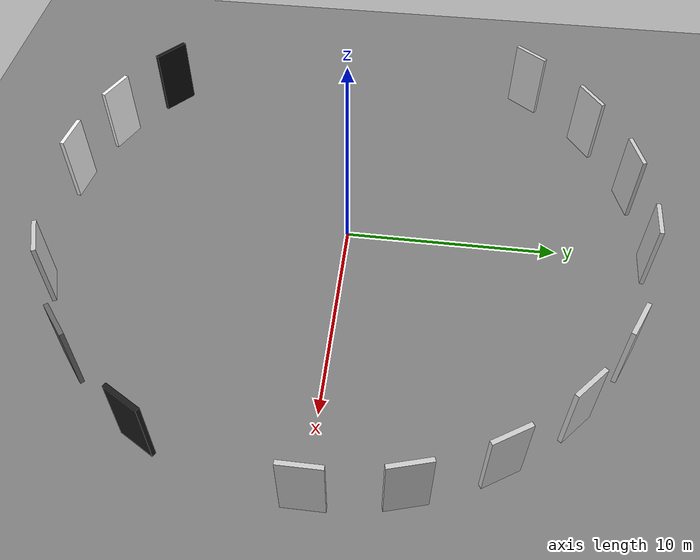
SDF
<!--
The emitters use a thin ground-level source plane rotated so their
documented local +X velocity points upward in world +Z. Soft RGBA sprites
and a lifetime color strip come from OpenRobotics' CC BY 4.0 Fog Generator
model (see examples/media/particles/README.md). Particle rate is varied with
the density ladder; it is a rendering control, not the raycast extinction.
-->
<?xml version="1.0"?>
<sdf version="1.9">
  <world name="ouster_smoke">

    <physics name="default" type="ignored">
      <max_step_size>0.004</max_step_size>
      <real_time_factor>1.0</real_time_factor>
      <real_time_update_rate>250</real_time_update_rate>
    </physics>

    <plugin filename="gz-sim-physics-system"
            name="gz::sim::systems::Physics"/>
    <plugin filename="gz-sim-altimeter-system"
            name="gz::sim::systems::Altimeter"/>
    <plugin filename="gz-sim-scene-broadcaster-system"
            name="gz::sim::systems::SceneBroadcaster"/>
    <plugin filename="gz-sim-user-commands-system"
            name="gz::sim::systems::UserCommands"/>
    <plugin filename="gz-sim-imu-system"
            name="gz::sim::systems::Imu"/>
    <!-- Serves each emitter's .../cmd topic so the visual clouds can be
         toggled and retuned at runtime. The explicit LiDAR volumes are
         intentionally unaffected by those rendering controls. -->
    <plugin filename="gz-sim-particle-emitter-system"
            name="gz::sim::systems::ParticleEmitter"/>

    <scene>
      <ambient>0.4 0.4 0.4 1</ambient>
      <background>0.7 0.8 0.9 1</background>
    </scene>

    <light type="directional" name="sun">
      <cast_shadows>true</cast_shadows>
      <pose>0 0 10 0 0 0</pose>
      <diffuse>1 1 1 1</diffuse>
      <specular>0.3 0.3 0.3 1</specular>
      <direction>-0.5 0.3 -1</direction>
    </light>

    <model name="ground_plane">
      <static>true</static>
      <link name="link">
        <collision name="collision">
          <geometry><plane><normal>0 0 1</normal><size>80 80</size></plane></geometry>
        </collision>
        <visual name="visual">
          <geometry><plane><normal>0 0 1</normal><size>80 80</size></plane></geometry>
          <material><ambient>0.3 0.3 0.3 1</ambient><diffuse>0.5 0.5 0.5 1</diffuse></material>
        </visual>
      </link>
    </model>

    <!-- ZONE A: density ladder (see the header table). The five walls omit
         laser_retro on purpose and therefore use base_reflectivity=50. -->
    <model name="A_wall_005">
      <static>true</static>
      <pose>14.000 0.000 1.50 0 0 0.0000</pose>
      <link name="link">
        <visual name="visual">
          <geometry><box><size>0.2 1.80 4.00</size></box></geometry>
          <material>
            <ambient>0.80 0.80 0.80 1</ambient>
            <diffuse>0.80 0.80 0.80 1</diffuse>
          </material>
        </visual>
      </link>
    </model>
    <model name="A_smoke_005">
      <static>true</static>
      <pose>7.000 0.000 1.20 0 0 0.0000</pose>
      <link name="link">
        <particle_emitter name="emitter" type="box">
          <emitting>true</emitting>
          <pose>0 0 -1.15 0 -1.5708 0</pose>
          <size>0.08 1.4 1.4</size>
          <particle_size>0.45 0.45 0.01</particle_size>
          <lifetime>6.0</lifetime>
          <min_velocity>0.20</min_velocity>
          <max_velocity>0.35</max_velocity>
          <rate>6</rate>
          <scale_rate>0.12</scale_rate>
          <particle_scatter_ratio>0.05</particle_scatter_ratio>
          <material>
            <diffuse>0.70 0.70 0.70 0.72</diffuse>
            <specular>0.05 0.05 0.05 1</specular>
            <pbr>
              <metal>
                <albedo_map>../media/particles/fog.png</albedo_map>
              </metal>
            </pbr>
          </material>
          <color_range_image>../media/particles/fogcolors.png</color_range_image>
        </particle_emitter>
      </link>
    </model>
    <model name="A_wall_015">
      <static>true</static>
      <pose>13.458 3.859 1.50 0 0 0.2793</pose>
      <link name="link">
        <visual name="visual">
          <geometry><box><size>0.2 1.80 4.00</size></box></geometry>
          <material>
            <ambient>0.80 0.80 0.80 1</ambient>
            <diffuse>0.80 0.80 0.80 1</diffuse>
          </material>
        </visual>
      </link>
    </model>
    <model name="A_smoke_015">
      <static>true</static>
      <pose>6.729 1.929 1.20 0 0 0.2793</pose>
      <link name="link">
        <particle_emitter name="emitter" type="box">
          <emitting>true</emitting>
          <pose>0 0 -1.15 0 -1.5708 0</pose>
          <size>0.08 1.4 1.4</size>
          <particle_size>0.45 0.45 0.01</particle_size>
          <lifetime>6.0</lifetime>
          <min_velocity>0.20</min_velocity>
          <max_velocity>0.35</max_velocity>
          <rate>12</rate>
          <scale_rate>0.12</scale_rate>
          <particle_scatter_ratio>0.15</particle_scatter_ratio>
          <material>
            <diffuse>0.70 0.70 0.70 0.72</diffuse>
            <specular>0.05 0.05 0.05 1</specular>
            <pbr>
              <metal>
                <albedo_map>../media/particles/fog.png</albedo_map>
              </metal>
            </pbr>
          </material>
          <color_range_image>../media/particles/fogcolors.png</color_range_image>
        </particle_emitter>
      </link>
    </model>
    <model name="A_wall_035">
      <static>true</static>
      <pose>11.873 7.419 1.50 0 0 0.5585</pose>
      <link name="link">
        <visual name="visual">
          <geometry><box><size>0.2 1.80 4.00</size></box></geometry>
          <material>
            <ambient>0.80 0.80 0.80 1</ambient>
            <diffuse>0.80 0.80 0.80 1</diffuse>
          </material>
        </visual>
      </link>
    </model>
    <model name="A_smoke_035">
      <static>true</static>
      <pose>5.936 3.709 1.20 0 0 0.5585</pose>
      <link name="link">
        <particle_emitter name="emitter" type="box">
          <emitting>true</emitting>
          <pose>0 0 -1.15 0 -1.5708 0</pose>
          <size>0.08 1.4 1.4</size>
          <particle_size>0.45 0.45 0.01</particle_size>
          <lifetime>6.0</lifetime>
          <min_velocity>0.20</min_velocity>
          <max_velocity>0.35</max_velocity>
          <rate>22</rate>
          <scale_rate>0.12</scale_rate>
          <particle_scatter_ratio>0.35</particle_scatter_ratio>
          <material>
            <diffuse>0.70 0.70 0.70 0.72</diffuse>
            <specular>0.05 0.05 0.05 1</specular>
            <pbr>
              <metal>
                <albedo_map>../media/particles/fog.png</albedo_map>
              </metal>
            </pbr>
          </material>
          <color_range_image>../media/particles/fogcolors.png</color_range_image>
        </particle_emitter>
      </link>
    </model>
    <model name="A_wall_065">
      <static>true</static>
      <pose>9.368 10.404 1.50 0 0 0.8378</pose>
      <link name="link">
        <visual name="visual">
          <geometry><box><size>0.2 1.80 4.00</size></box></geometry>
          <material>
            <ambient>0.80 0.80 0.80 1</ambient>
            <diffuse>0.80 0.80 0.80 1</diffuse>
          </material>
        </visual>
      </link>
    </model>
    <model name="A_smoke_065">
      <static>true</static>
      <pose>4.684 5.202 1.20 0 0 0.8378</pose>
      <link name="link">
        <particle_emitter name="emitter" type="box">
          <emitting>true</emitting>
          <pose>0 0 -1.15 0 -1.5708 0</pose>
          <size>0.08 1.4 1.4</size>
          <particle_size>0.45 0.45 0.01</particle_size>
          <lifetime>6.0</lifetime>
          <min_velocity>0.20</min_velocity>
          <max_velocity>0.35</max_velocity>
          <rate>36</rate>
          <scale_rate>0.12</scale_rate>
          <particle_scatter_ratio>0.65</particle_scatter_ratio>
          <material>
            <diffuse>0.70 0.70 0.70 0.72</diffuse>
            <specular>0.05 0.05 0.05 1</specular>
            <pbr>
              <metal>
                <albedo_map>../media/particles/fog.png</albedo_map>
              </metal>
            </pbr>
          </material>
          <color_range_image>../media/particles/fogcolors.png</color_range_image>
        </particle_emitter>
      </link>
    </model>
    <model name="A_wall_100">
      <static>true</static>
      <pose>6.137 12.583 1.50 0 0 1.1170</pose>
      <link name="link">
        <visual name="visual">
          <geometry><box><size>0.2 1.80 4.00</size></box></geometry>
          <material>
            <ambient>0.80 0.80 0.80 1</ambient>
            <diffuse>0.80 0.80 0.80 1</diffuse>
          </material>
        </visual>
      </link>
    </model>
    <model name="A_smoke_100">
      <static>true</static>
      <pose>3.069 6.292 1.20 0 0 1.1170</pose>
      <link name="link">
        <particle_emitter name="emitter" type="box">
          <emitting>true</emitting>
          <pose>0 0 -1.15 0 -1.5708 0</pose>
          <size>0.08 1.4 1.4</size>
          <particle_size>0.45 0.45 0.01</particle_size>
          <lifetime>6.0</lifetime>
          <min_velocity>0.20</min_velocity>
          <max_velocity>0.35</max_velocity>
          <rate>48</rate>
          <scale_rate>0.12</scale_rate>
          <particle_scatter_ratio>1.0</particle_scatter_ratio>
          <material>
            <diffuse>0.70 0.70 0.70 0.72</diffuse>
            <specular>0.05 0.05 0.05 1</specular>
            <pbr>
              <metal>
                <albedo_map>../media/particles/fog.png</albedo_map>
              </metal>
            </pbr>
          </material>
          <color_range_image>../media/particles/fogcolors.png</color_range_image>
        </particle_emitter>
      </link>
    </model>
    <!-- ZONE B: one density, multiple explicit LiDAR-volume shapes; the
         corresponding visual plumes deliberately share one emitter setup. -->
    <model name="B_wall_box">
      <static>true</static>
      <pose>0.489 13.991 1.50 0 0 1.5359</pose>
      <link name="link">
        <visual name="visual">
          <geometry><box><size>0.2 1.80 4.00</size></box></geometry>
          <laser_retro>0.8</laser_retro>
          <material>
            <ambient>0.80 0.80 0.80 1</ambient>
            <diffuse>0.80 0.80 0.80 1</diffuse>
          </material>
        </visual>
      </link>
    </model>
    <model name="B_smoke_box">
      <static>true</static>
      <pose>0.244 6.996 1.20 0 0 1.5359</pose>
      <link name="link">
        <particle_emitter name="emitter" type="box">
          <emitting>true</emitting>
          <pose>0 0 -1.15 0 -1.5708 0</pose>
          <size>0.08 1.4 1.4</size>
          <particle_size>0.45 0.45 0.01</particle_size>
          <lifetime>6.0</lifetime>
          <min_velocity>0.20</min_velocity>
          <max_velocity>0.35</max_velocity>
          <rate>22</rate>
          <scale_rate>0.12</scale_rate>
          <particle_scatter_ratio>0.35</particle_scatter_ratio>
          <material>
            <diffuse>0.70 0.70 0.70 0.72</diffuse>
            <specular>0.05 0.05 0.05 1</specular>
            <pbr>
              <metal>
                <albedo_map>../media/particles/fog.png</albedo_map>
              </metal>
            </pbr>
          </material>
          <color_range_image>../media/particles/fogcolors.png</color_range_image>
        </particle_emitter>
      </link>
    </model>
    <model name="B_wall_cylinder">
      <static>true</static>
      <pose>-3.859 13.458 1.50 0 0 1.8500</pose>
      <link name="link">
        <visual name="visual">
          <geometry><box><size>0.2 1.80 4.00</size></box></geometry>
          <laser_retro>0.8</laser_retro>
          <material>
            <ambient>0.80 0.80 0.80 1</ambient>
            <diffuse>0.80 0.80 0.80 1</diffuse>
          </material>
        </visual>
      </link>
    </model>
    <model name="B_smoke_cylinder">
      <static>true</static>
      <pose>-1.929 6.729 1.20 0 0 1.8500</pose>
      <link name="link">
        <particle_emitter name="emitter" type="box">
          <emitting>true</emitting>
          <pose>0 0 -1.15 0 -1.5708 0</pose>
          <size>0.08 1.4 1.4</size>
          <particle_size>0.45 0.45 0.01</particle_size>
          <lifetime>6.0</lifetime>
          <min_velocity>0.20</min_velocity>
          <max_velocity>0.35</max_velocity>
          <rate>22</rate>
          <scale_rate>0.12</scale_rate>
          <particle_scatter_ratio>0.35</particle_scatter_ratio>
          <material>
            <diffuse>0.70 0.70 0.70 0.72</diffuse>
            <specular>0.05 0.05 0.05 1</specular>
            <pbr>
              <metal>
                <albedo_map>../media/particles/fog.png</albedo_map>
              </metal>
            </pbr>
          </material>
          <color_range_image>../media/particles/fogcolors.png</color_range_image>
        </particle_emitter>
      </link>
    </model>
    <model name="B_wall_ellipsoid">
      <static>true</static>
      <pose>-7.829 11.607 1.50 0 0 2.1642</pose>
      <link name="link">
        <visual name="visual">
          <geometry><box><size>0.2 1.80 4.00</size></box></geometry>
          <laser_retro>0.8</laser_retro>
          <material>
            <ambient>0.80 0.80 0.80 1</ambient>
            <diffuse>0.80 0.80 0.80 1</diffuse>
          </material>
        </visual>
      </link>
    </model>
    <model name="B_smoke_ellipsoid">
      <static>true</static>
      <pose>-3.914 5.803 1.20 0 0 2.1642</pose>
      <link name="link">
        <particle_emitter name="emitter" type="box">
          <emitting>true</emitting>
          <pose>0 0 -1.15 0 -1.5708 0</pose>
          <size>0.08 1.4 1.4</size>
          <particle_size>0.45 0.45 0.01</particle_size>
          <lifetime>6.0</lifetime>
          <min_velocity>0.20</min_velocity>
          <max_velocity>0.35</max_velocity>
          <rate>22</rate>
          <scale_rate>0.12</scale_rate>
          <particle_scatter_ratio>0.35</particle_scatter_ratio>
          <material>
            <diffuse>0.70 0.70 0.70 0.72</diffuse>
            <specular>0.05 0.05 0.05 1</specular>
            <pbr>
              <metal>
                <albedo_map>../media/particles/fog.png</albedo_map>
              </metal>
            </pbr>
          </material>
          <color_range_image>../media/particles/fogcolors.png</color_range_image>
        </particle_emitter>
      </link>
    </model>
    <model name="B_wall_point">
      <static>true</static>
      <pose>-11.032 8.619 1.50 0 0 2.4784</pose>
      <link name="link">
        <visual name="visual">
          <geometry><box><size>0.2 1.80 4.00</size></box></geometry>
          <laser_retro>0.8</laser_retro>
          <material>
            <ambient>0.80 0.80 0.80 1</ambient>
            <diffuse>0.80 0.80 0.80 1</diffuse>
          </material>
        </visual>
      </link>
    </model>
    <model name="B_smoke_point">
      <static>true</static>
      <pose>-5.516 4.310 1.20 0 0 2.4784</pose>
      <link name="link">
        <particle_emitter name="emitter" type="box">
          <emitting>true</emitting>
          <pose>0 0 -1.15 0 -1.5708 0</pose>
          <size>0.08 1.4 1.4</size>
          <particle_size>0.45 0.45 0.01</particle_size>
          <lifetime>6.0</lifetime>
          <min_velocity>0.20</min_velocity>
          <max_velocity>0.35</max_velocity>
          <rate>22</rate>
          <scale_rate>0.12</scale_rate>
          <particle_scatter_ratio>0.35</particle_scatter_ratio>
          <material>
            <diffuse>0.70 0.70 0.70 0.72</diffuse>
            <specular>0.05 0.05 0.05 1</specular>
            <pbr>
              <metal>
                <albedo_map>../media/particles/fog.png</albedo_map>
              </metal>
            </pbr>
          </material>
          <color_range_image>../media/particles/fogcolors.png</color_range_image>
        </particle_emitter>
      </link>
    </model>
    <!-- ZONE C: no wall behind - every return here is the medium. -->
    <model name="C_sky_020">
      <static>true</static>
      <pose>-6.792 1.693 1.20 0 0 2.8972</pose>
      <link name="link">
        <particle_emitter name="emitter" type="box">
          <emitting>true</emitting>
          <pose>0 0 -1.15 0 -1.5708 0</pose>
          <size>0.08 1.4 1.4</size>
          <particle_size>0.45 0.45 0.01</particle_size>
          <lifetime>6.0</lifetime>
          <min_velocity>0.20</min_velocity>
          <max_velocity>0.35</max_velocity>
          <rate>14</rate>
          <scale_rate>0.12</scale_rate>
          <particle_scatter_ratio>0.2</particle_scatter_ratio>
          <material>
            <diffuse>0.72 0.64 0.55 0.72</diffuse>
            <specular>0.05 0.05 0.05 1</specular>
            <pbr>
              <metal>
                <albedo_map>../media/particles/fog.png</albedo_map>
              </metal>
            </pbr>
          </material>
          <color_range_image>../media/particles/fogcolors.png</color_range_image>
        </particle_emitter>
      </link>
    </model>
    <model name="C_sky_050">
      <static>true</static>
      <pose>-6.962 -0.732 1.20 0 0 3.2463</pose>
      <link name="link">
        <particle_emitter name="emitter" type="box">
          <emitting>true</emitting>
          <pose>0 0 -1.15 0 -1.5708 0</pose>
          <size>0.08 1.4 1.4</size>
          <particle_size>0.45 0.45 0.01</particle_size>
          <lifetime>6.0</lifetime>
          <min_velocity>0.20</min_velocity>
          <max_velocity>0.35</max_velocity>
          <rate>28</rate>
          <scale_rate>0.12</scale_rate>
          <particle_scatter_ratio>0.5</particle_scatter_ratio>
          <material>
            <diffuse>0.72 0.64 0.55 0.72</diffuse>
            <specular>0.05 0.05 0.05 1</specular>
            <pbr>
              <metal>
                <albedo_map>../media/particles/fog.png</albedo_map>
              </metal>
            </pbr>
          </material>
          <color_range_image>../media/particles/fogcolors.png</color_range_image>
        </particle_emitter>
      </link>
    </model>
    <model name="C_sky_100">
      <static>true</static>
      <pose>-6.292 -3.069 1.20 0 0 3.5954</pose>
      <link name="link">
        <particle_emitter name="emitter" type="box">
          <emitting>true</emitting>
          <pose>0 0 -1.15 0 -1.5708 0</pose>
          <size>0.08 1.4 1.4</size>
          <particle_size>0.45 0.45 0.01</particle_size>
          <lifetime>6.0</lifetime>
          <min_velocity>0.20</min_velocity>
          <max_velocity>0.35</max_velocity>
          <rate>48</rate>
          <scale_rate>0.12</scale_rate>
          <particle_scatter_ratio>1.0</particle_scatter_ratio>
          <material>
            <diffuse>0.72 0.64 0.55 0.72</diffuse>
            <specular>0.05 0.05 0.05 1</specular>
            <pbr>
              <metal>
                <albedo_map>../media/particles/fog.png</albedo_map>
              </metal>
            </pbr>
          </material>
          <color_range_image>../media/particles/fogcolors.png</color_range_image>
        </particle_emitter>
      </link>
    </model>
    <!-- ZONE D: NEAR_IR airlight - smoke brightens ambient, dims laser. -->
    <model name="D_wall_dark">
      <static>true</static>
      <pose>-8.999 -10.725 1.50 0 0 4.0143</pose>
      <link name="link">
        <visual name="visual">
          <geometry><box><size>0.2 1.80 4.00</size></box></geometry>
          <laser_retro>0.05</laser_retro>
          <material>
            <ambient>0.05 0.05 0.05 1</ambient>
            <diffuse>0.05 0.05 0.05 1</diffuse>
          </material>
        </visual>
      </link>
    </model>
    <model name="D_smoke_dark">
      <static>true</static>
      <pose>-4.500 -5.362 1.20 0 0 4.0143</pose>
      <link name="link">
        <particle_emitter name="emitter" type="box">
          <emitting>true</emitting>
          <pose>0 0 -1.15 0 -1.5708 0</pose>
          <size>0.08 1.4 1.4</size>
          <particle_size>0.45 0.45 0.01</particle_size>
          <lifetime>6.0</lifetime>
          <min_velocity>0.20</min_velocity>
          <max_velocity>0.35</max_velocity>
          <rate>28</rate>
          <scale_rate>0.12</scale_rate>
          <particle_scatter_ratio>0.5</particle_scatter_ratio>
          <material>
            <diffuse>0.70 0.70 0.70 0.72</diffuse>
            <specular>0.05 0.05 0.05 1</specular>
            <pbr>
              <metal>
                <albedo_map>../media/particles/fog.png</albedo_map>
              </metal>
            </pbr>
          </material>
          <color_range_image>../media/particles/fogcolors.png</color_range_image>
        </particle_emitter>
      </link>
    </model>
    <model name="D_wall_bright">
      <static>true</static>
      <pose>-5.694 -12.790 1.50 0 0 4.2935</pose>
      <link name="link">
        <visual name="visual">
          <geometry><box><size>0.2 1.80 4.00</size></box></geometry>
          <laser_retro>0.95</laser_retro>
          <material>
            <ambient>0.95 0.95 0.95 1</ambient>
            <diffuse>0.95 0.95 0.95 1</diffuse>
          </material>
        </visual>
      </link>
    </model>
    <model name="D_smoke_bright">
      <static>true</static>
      <pose>-2.847 -6.395 1.20 0 0 4.2935</pose>
      <link name="link">
        <particle_emitter name="emitter" type="box">
          <emitting>true</emitting>
          <pose>0 0 -1.15 0 -1.5708 0</pose>
          <size>0.08 1.4 1.4</size>
          <particle_size>0.45 0.45 0.01</particle_size>
          <lifetime>6.0</lifetime>
          <min_velocity>0.20</min_velocity>
          <max_velocity>0.35</max_velocity>
          <rate>28</rate>
          <scale_rate>0.12</scale_rate>
          <particle_scatter_ratio>0.5</particle_scatter_ratio>
          <material>
            <diffuse>0.70 0.70 0.70 0.72</diffuse>
            <specular>0.05 0.05 0.05 1</specular>
            <pbr>
              <metal>
                <albedo_map>../media/particles/fog.png</albedo_map>
              </metal>
            </pbr>
          </material>
          <color_range_image>../media/particles/fogcolors.png</color_range_image>
        </particle_emitter>
      </link>
    </model>
    <model name="D_wall_reference">
      <static>true</static>
      <pose>-1.948 -13.864 1.50 0 0 4.5728</pose>
      <link name="link">
        <visual name="visual">
          <geometry><box><size>0.2 1.80 4.00</size></box></geometry>
          <laser_retro>0.95</laser_retro>
          <material>
            <ambient>0.95 0.95 0.95 1</ambient>
            <diffuse>0.95 0.95 0.95 1</diffuse>
          </material>
        </visual>
      </link>
    </model>
    <!-- ZONE E: clear-air control walls, no emitters. -->
    <model name="E_clear_080">
      <static>true</static>
      <pose>4.788 -13.156 1.50 0 0 5.0615</pose>
      <link name="link">
        <visual name="visual">
          <geometry><box><size>0.2 1.80 4.00</size></box></geometry>
          <laser_retro>0.8</laser_retro>
          <material>
            <ambient>0.80 0.80 0.80 1</ambient>
            <diffuse>0.80 0.80 0.80 1</diffuse>
          </material>
        </visual>
      </link>
    </model>
    <model name="E_clear_040">
      <static>true</static>
      <pose>8.999 -10.725 1.50 0 0 5.4105</pose>
      <link name="link">
        <visual name="visual">
          <geometry><box><size>0.2 1.80 4.00</size></box></geometry>
          <laser_retro>0.4</laser_retro>
          <material>
            <ambient>0.40 0.40 0.40 1</ambient>
            <diffuse>0.40 0.40 0.40 1</diffuse>
          </material>
        </visual>
      </link>
    </model>
    <model name="E_clear_010">
      <static>true</static>
      <pose>12.124 -7.000 1.50 0 0 5.7596</pose>
      <link name="link">
        <visual name="visual">
          <geometry><box><size>0.2 1.80 4.00</size></box></geometry>
          <laser_retro>0.1</laser_retro>
          <material>
            <ambient>0.10 0.10 0.10 1</ambient>
            <diffuse>0.10 0.10 0.10 1</diffuse>
          </material>
        </visual>
      </link>
    </model>
  </world>
</sdf>
